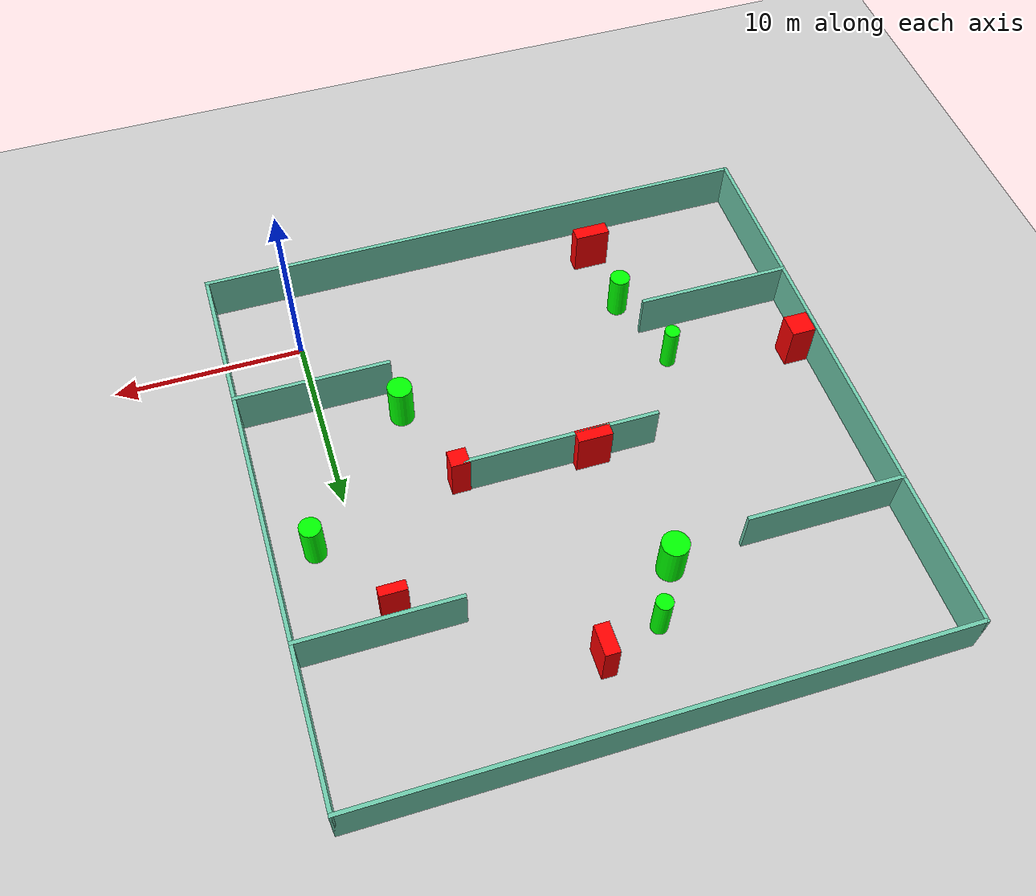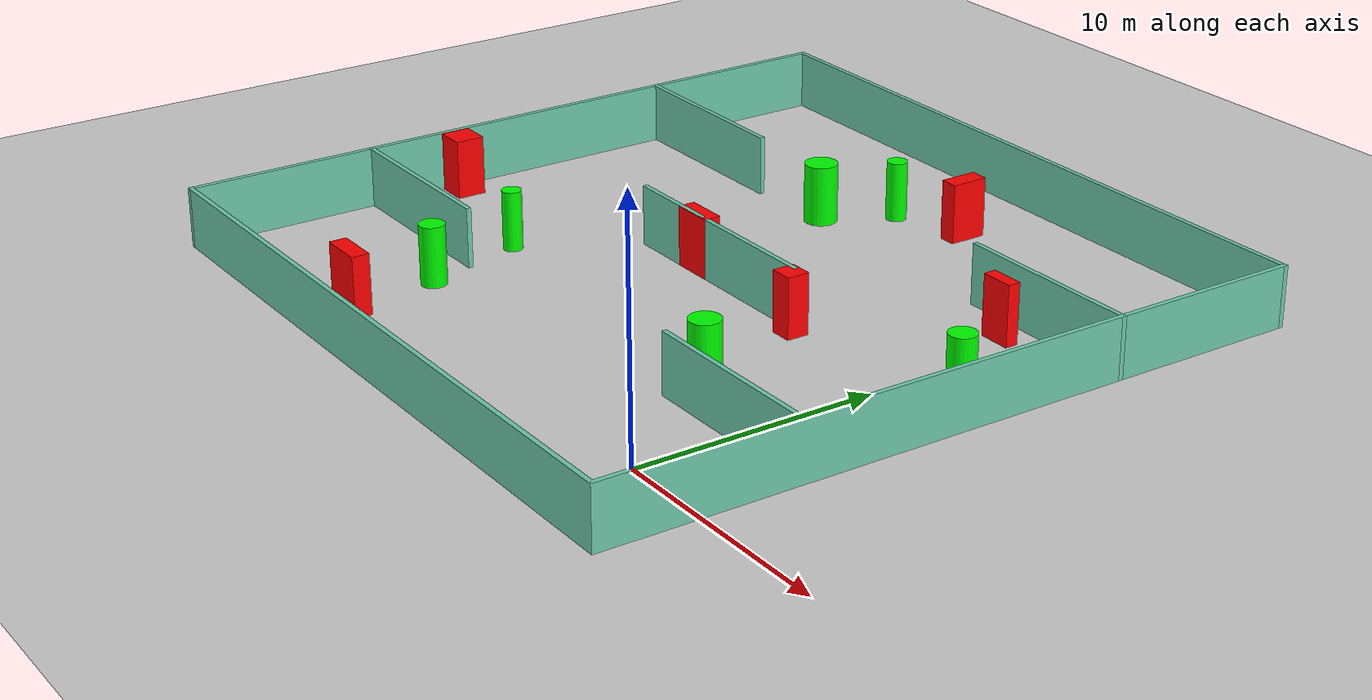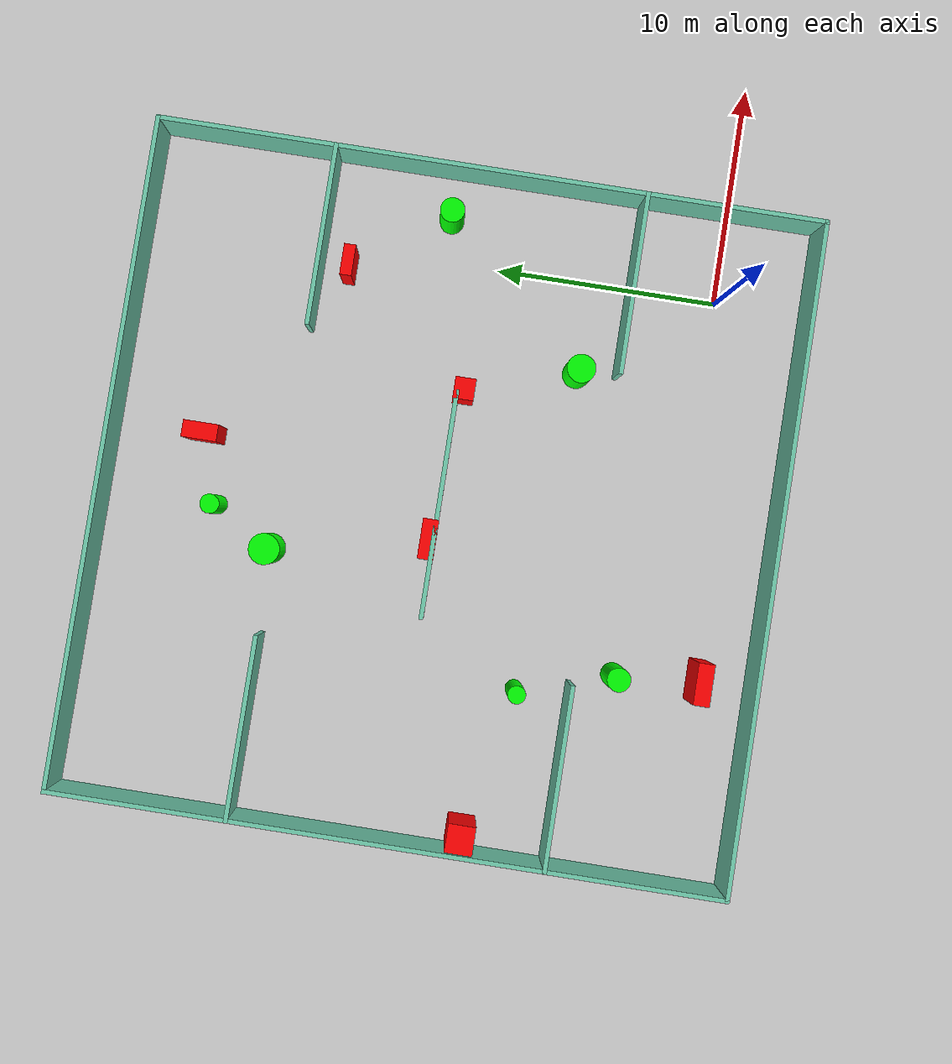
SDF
<sdf version="1.7">
 <world name="default">
  <light name="sun" type="directional">
   <pose>0 0 10 0 -0 0</pose>
   <diffuse>0.8 0.8 0.8 1</diffuse>
   <specular>0.2 0.2 0.2 1</specular>
   <attenuation>
    <range>1000</range>
    <constant>0.9</constant>
    <linear>0.01</linear>
    <quadratic>0.001</quadratic>
   </attenuation>
   <direction>-0.5 0.1 -0.9</direction>
   <spot><inner_angle>0</inner_angle><outer_angle>0</outer_angle><falloff>0</falloff></spot>
  </light>
  <model name="ground_plane">
   <static>1</static>
   <link name="link">
    <collision name="collision">
     <geometry><plane><normal>0 0 1</normal><size>100 100</size></plane></geometry>
     <surface>
      <contact><collide_bitmask>65535</collide_bitmask></contact>
      <friction><ode><mu>100</mu><mu2>50</mu2></ode></friction>
     </surface>
    </collision>
    <visual name="visual">
     <cast_shadows>0</cast_shadows>
     <geometry><plane><normal>0 0 1</normal><size>100 100</size></plane></geometry>
     <material>
      <script><uri>file://media/materials/scripts/gazebo.material</uri><name>Gazebo/Grey</name></script>
     </material>
    </visual>
   </link>
  </model>
  <gravity>0 0 -9.8</gravity>
  <magnetic_field>6e-06 2.3e-05 -4.2e-05</magnetic_field>
  <atmosphere type="adiabatic"/>
  <physics type="ode">
   <max_step_size>0.001</max_step_size>
   <real_time_factor>1</real_time_factor>
   <real_time_update_rate>1000</real_time_update_rate>
  </physics>
  <scene><ambient>0.4 0.4 0.4 1</ambient><background>0.7 0.7 0.7 1</background><shadows>1</shadows></scene>
  <spherical_coordinates>
   <surface_model>EARTH_WGS84</surface_model>
   <latitude_deg>0</latitude_deg>
   <longitude_deg>0</longitude_deg>
   <elevation>0</elevation>
   <heading_deg>0</heading_deg>
  </spherical_coordinates>
  <model name="my_base_walls">
   <link name="Wall_10">
    <collision name="Wall_10_Collision">
     <geometry><box><size>8.2 0.2 2.5</size></box></geometry>
     <pose>0 0 1.25 0 -0 0</pose>
    </collision>
    <visual name="Wall_10_Visual">
     <pose>0 0 1.25 0 -0 0</pose>
     <geometry><box><size>8.2 0.2 2.5</size></box></geometry>
     <material>
      <script><uri>file://media/materials/scripts/gazebo.material</uri><name>Gazebo/Grey</name></script>
      <ambient>0.435294 0.796078 0.67451 1</ambient>
     </material>
     <meta><layer>0</layer></meta>
    </visual>
    <pose>-11 -7 0 0 -0 0</pose>
   </link>
   <link name="Wall_12">
    <collision name="Wall_12_Collision">
     <geometry><box><size>8.2 0.2 2.5</size></box></geometry>
     <pose>0 0 1.25 0 -0 0</pose>
    </collision>
    <visual name="Wall_12_Visual">
     <pose>0 0 1.25 0 -0 0</pose>
     <geometry><box><size>8.2 0.2 2.5</size></box></geometry>
     <material>
      <script><uri>file://media/materials/scripts/gazebo.material</uri><name>Gazebo/Grey</name></script>
      <ambient>0.435294 0.796078 0.67451 1</ambient>
     </material>
     <meta><layer>0</layer></meta>
    </visual>
    <pose>-11 7 0 0 -0 0</pose>
   </link>
   <link name="Wall_14">
    <collision name="Wall_14_Collision">
     <geometry><box><size>8.2 0.2 2.5</size></box></geometry>
     <pose>0 0 1.25 0 -0 0</pose>
    </collision>
    <visual name="Wall_14_Visual">
     <pose>0 0 1.25 0 -0 0</pose>
     <geometry><box><size>8.2 0.2 2.5</size></box></geometry>
     <material>
      <script><uri>file://media/materials/scripts/gazebo.material</uri><name>Gazebo/Grey</name></script>
      <ambient>0.435294 0.796078 0.67451 1</ambient>
     </material>
     <meta><layer>0</layer></meta>
    </visual>
    <pose>11 7 0 0 -0 3.14159</pose>
   </link>
   <link name="Wall_16">
    <collision name="Wall_16_Collision">
     <geometry><box><size>10.2 0.2 2.5</size></box></geometry>
     <pose>0 0 1.25 0 -0 0</pose>
    </collision>
    <visual name="Wall_16_Visual">
     <pose>0 0 1.25 0 -0 0</pose>
     <geometry><box><size>10.2 0.2 2.5</size></box></geometry>
     <material>
      <script><uri>file://media/materials/scripts/gazebo.material</uri><name>Gazebo/Grey</name></script>
      <ambient>0.435294 0.796078 0.67451 1</ambient>
     </material>
     <meta><layer>0</layer></meta>
    </visual>
    <pose>0 0 0 0 -0 3.14159</pose>
   </link>
   <link name="Wall_2">
    <collision name="Wall_2_Collision">
     <geometry><box><size>30.2 0.2 2.5</size></box></geometry>
     <pose>0 0 1.25 0 -0 0</pose>
    </collision>
    <visual name="Wall_2_Visual">
     <pose>0 0 1.25 0 -0 0</pose>
     <geometry><box><size>30.2 0.2 2.5</size></box></geometry>
     <material>
      <script><uri>file://media/materials/scripts/gazebo.material</uri><name>Gazebo/Grey</name></script>
      <ambient>0.435294 0.796078 0.67451 1</ambient>
     </material>
     <meta><layer>0</layer></meta>
    </visual>
    <pose>0 -15 0 0 -0 3.14159</pose>
   </link>
   <link name="Wall_3">
    <collision name="Wall_3_Collision">
     <geometry><box><size>30.2 0.2 2.5</size></box></geometry>
     <pose>0 0 1.25 0 -0 0</pose>
    </collision>
    <visual name="Wall_3_Visual">
     <pose>0 0 1.25 0 -0 0</pose>
     <geometry><box><size>30.2 0.2 2.5</size></box></geometry>
     <material>
      <script><uri>file://media/materials/scripts/gazebo.material</uri><name>Gazebo/Grey</name></script>
      <ambient>0.435294 0.796078 0.67451 1</ambient>
     </material>
     <meta><layer>0</layer></meta>
    </visual>
    <pose>-15 0 0 0 -0 1.5708</pose>
   </link>
   <link name="Wall_4">
    <collision name="Wall_4_Collision">
     <geometry><box><size>30.2 0.2 2.5</size></box></geometry>
     <pose>0 0 1.25 0 -0 0</pose>
    </collision>
    <visual name="Wall_4_Visual">
     <pose>0 0 1.25 0 -0 0</pose>
     <geometry><box><size>30.2 0.2 2.5</size></box></geometry>
     <material>
      <script><uri>file://media/materials/scripts/gazebo.material</uri><name>Gazebo/Grey</name></script>
      <ambient>0.435294 0.796078 0.67451 1</ambient>
     </material>
     <meta><layer>0</layer></meta>
    </visual>
    <pose>0 15 0 0 -0 0</pose>
   </link>
   <link name="Wall_6">
    <collision name="Wall_6_Collision">
     <geometry><box><size>30.2 0.2 2.5</size></box></geometry>
     <pose>0 0 1.25 0 -0 0</pose>
    </collision>
    <visual name="Wall_6_Visual">
     <pose>0 0 1.25 0 -0 0</pose>
     <geometry><box><size>30.2 0.2 2.5</size></box></geometry>
     <material>
      <script><uri>file://media/materials/scripts/gazebo.material</uri><name>Gazebo/Grey</name></script>
      <ambient>0.435294 0.796078 0.67451 1</ambient>
     </material>
     <meta><layer>0</layer></meta>
    </visual>
    <pose>15 0 0 0 -0 1.5708</pose>
   </link>
   <link name="Wall_8">
    <collision name="Wall_8_Collision">
     <geometry><box><size>8.2 0.2 2.5</size></box></geometry>
     <pose>0 0 1.25 0 -0 0</pose>
    </collision>
    <visual name="Wall_8_Visual">
     <pose>0 0 1.25 0 -0 0</pose>
     <geometry><box><size>8.2 0.2 2.5</size></box></geometry>
     <material>
      <script><uri>file://media/materials/scripts/gazebo.material</uri><name>Gazebo/Grey</name></script>
      <ambient>0.435294 0.796078 0.67451 1</ambient>
     </material>
     <meta><layer>0</layer></meta>
    </visual>
    <pose>11 -7 0 0 -0 3.14159</pose>
   </link>
   <static>1</static>
   <pose>-11 11 0 0 -0 0</pose>
  </model>
  <model name="cylinder1">
   <static>1</static>
   <link name="link">
    <inertial>
     <mass>1</mass>
     <inertia><ixx>0.5</ixx><ixy>0</ixy><ixz>0</ixz><iyy>0.5</iyy><iyz>0</iyz><izz>1</izz></inertia>
    </inertial>
    <collision name="collision">
     <geometry><cylinder><radius>0.6397431009562431</radius><length>2.5</length></cylinder></geometry>
    </collision>
    <visual name="visual">
     <geometry><cylinder><radius>0.6397431009562431</radius><length>2.5</length></cylinder></geometry>
     <material>
      <ambient>0 1 0 1</ambient>
      <diffuse>0 1 0 1</diffuse>
      <specular>0.1 0.1 0.1 1</specular>
      <emissive>0 0 0 0</emissive>
     </material>
    </visual>
   </link>
   <pose>-4.134108521977549 5.742899493379516 1.25 0 0 0</pose>
  </model>
  <model name="cylinder2">
   <static>1</static>
   <link name="link">
    <inertial>
     <mass>1</mass>
     <inertia><ixx>0.5</ixx><ixy>0</ixy><ixz>0</ixz><iyy>0.5</iyy><iyz>0</iyz><izz>1</izz></inertia>
    </inertial>
    <collision name="collision">
     <geometry><cylinder><radius>0.6905110313114032</radius><length>2.5</length></cylinder></geometry>
    </collision>
    <visual name="visual">
     <geometry><cylinder><radius>0.6905110313114032</radius><length>2.5</length></cylinder></geometry>
     <material>
      <ambient>0 1 0 1</ambient>
      <diffuse>0 1 0 1</diffuse>
      <specular>0.1 0.1 0.1 1</specular>
      <emissive>0 0 0 0</emissive>
     </material>
    </visual>
   </link>
   <pose>-14.142089589013787 18.261413111695276 1.25 0 0 0</pose>
  </model>
  <model name="cylinder3">
   <static>1</static>
   <link name="link">
    <inertial>
     <mass>1</mass>
     <inertia><ixx>0.5</ixx><ixy>0</ixy><ixz>0</ixz><iyy>0.5</iyy><iyz>0</iyz><izz>1</izz></inertia>
    </inertial>
    <collision name="collision">
     <geometry><cylinder><radius>0.5536535102079037</radius><length>2.5</length></cylinder></geometry>
    </collision>
    <visual name="visual">
     <geometry><cylinder><radius>0.5536535102079037</radius><length>2.5</length></cylinder></geometry>
     <material>
      <ambient>0 1 0 1</ambient>
      <diffuse>0 1 0 1</diffuse>
      <specular>0.1 0.1 0.1 1</specular>
      <emissive>0 0 0 0</emissive>
     </material>
    </visual>
   </link>
   <pose>1.9284412237336817 12.444355445931023 1.25 0 0 0</pose>
  </model>
  <model name="cylinder4">
   <static>1</static>
   <link name="link">
    <inertial>
     <mass>1</mass>
     <inertia><ixx>0.5</ixx><ixy>0</ixy><ixz>0</ixz><iyy>0.5</iyy><iyz>0</iyz><izz>1</izz></inertia>
    </inertial>
    <collision name="collision">
     <geometry><cylinder><radius>0.3994426998415395</radius><length>2.5</length></cylinder></geometry>
    </collision>
    <visual name="visual">
     <geometry><cylinder><radius>0.3994426998415395</radius><length>2.5</length></cylinder></geometry>
     <material>
      <ambient>0 1 0 1</ambient>
      <diffuse>0 1 0 1</diffuse>
      <specular>0.1 0.1 0.1 1</specular>
      <emissive>0 0 0 0</emissive>
     </material>
    </visual>
   </link>
   <pose>-18.67029576129611 6.363129776253073 1.25 0 0 0</pose>
  </model>
  <model name="cylinder5">
   <static>1</static>
   <link name="link">
    <inertial>
     <mass>1</mass>
     <inertia><ixx>0.5</ixx><ixy>0</ixy><ixz>0</ixz><iyy>0.5</iyy><iyz>0</iyz><izz>1</izz></inertia>
    </inertial>
    <collision name="collision">
     <geometry><cylinder><radius>0.42861821363298774</radius><length>2.5</length></cylinder></geometry>
    </collision>
    <visual name="visual">
     <geometry><cylinder><radius>0.42861821363298774</radius><length>2.5</length></cylinder></geometry>
     <material>
      <ambient>0 1 0 1</ambient>
      <diffuse>0 1 0 1</diffuse>
      <specular>0.1 0.1 0.1 1</specular>
      <emissive>0 0 0 0</emissive>
     </material>
    </visual>
   </link>
   <pose>-12.558447688513667 20.93592740833566 1.25 0 0 0</pose>
  </model>
  <model name="cylinder6">
   <static>1</static>
   <link name="link">
    <inertial>
     <mass>1</mass>
     <inertia><ixx>0.5</ixx><ixy>0</ixy><ixz>0</ixz><iyy>0.5</iyy><iyz>0</iyz><izz>1</izz></inertia>
    </inertial>
    <collision name="collision">
     <geometry><cylinder><radius>0.526168693816774</radius><length>2.5</length></cylinder></geometry>
    </collision>
    <visual name="visual">
     <geometry><cylinder><radius>0.526168693816774</radius><length>2.5</length></cylinder></geometry>
     <material>
      <ambient>0 1 0 1</ambient>
      <diffuse>0 1 0 1</diffuse>
      <specular>0.1 0.1 0.1 1</specular>
      <emissive>0 0 0 0</emissive>
     </material>
    </visual>
   </link>
   <pose>-17.339391403017526 2.061014521502382 1.25 0 0 0</pose>
  </model>
  <model name="box1">
   <static>1</static>
   <link name="link">
    <inertial>
     <mass>1</mass>
     <inertia><ixx>0.083</ixx><ixy>0</ixy><ixz>0</ixz><iyy>0.083</iyy><iyz>0</iyz><izz>0.083</izz></inertia>
    </inertial>
    <collision name="collision">
     <geometry><box><size>1.8647187526219808 0.7261707900950382 2.5</size></box></geometry>
    </collision>
    <visual name="visual">
     <geometry><box><size>1.8647187526219808 0.7261707900950382 2.5</size></box></geometry>
     <material>
      <ambient>1 0 0 1</ambient>
      <diffuse>1 0 0 1</diffuse>
      <specular>0.1 0.1 0.1 1</specular>
      <emissive>0 0 0 0</emissive>
     </material>
    </visual>
    <sensor name="my_contact" type="contact">
     <contact><collision>box_collision</collision><topic>__default_topic__</topic></contact>
    </sensor>
   </link>
   <pose>-16.974040410379402 -1.636558433333073 1.25 0 0 0</pose>
  </model>
  <model name="box2">
   <static>1</static>
   <link name="link">
    <inertial>
     <mass>1</mass>
     <inertia><ixx>0.083</ixx><ixy>0</ixy><ixz>0</ixz><iyy>0.083</iyy><iyz>0</iyz><izz>0.083</izz></inertia>
    </inertial>
    <collision name="collision">
     <geometry><box><size>0.9658207679491679 0.9241134005880147 2.5</size></box></geometry>
    </collision>
    <visual name="visual">
     <geometry><box><size>0.9658207679491679 0.9241134005880147 2.5</size></box></geometry>
     <material>
      <ambient>1 0 0 1</ambient>
      <diffuse>1 0 0 1</diffuse>
      <specular>0.1 0.1 0.1 1</specular>
      <emissive>0 0 0 0</emissive>
     </material>
    </visual>
    <sensor name="my_contact" type="contact">
     <contact><collision>box_collision</collision><topic>__default_topic__</topic></contact>
    </sensor>
   </link>
   <pose>-5.810021066209746 10.690204834443186 1.25 0 0 0</pose>
  </model>
  <model name="box3">
   <static>1</static>
   <link name="link">
    <inertial>
     <mass>1</mass>
     <inertia><ixx>0.083</ixx><ixy>0</ixy><ixz>0</ixz><iyy>0.083</iyy><iyz>0</iyz><izz>0.083</izz></inertia>
    </inertial>
    <collision name="collision">
     <geometry><box><size>1.7931808193962784 0.6979119515530111 2.5</size></box></geometry>
    </collision>
    <visual name="visual">
     <geometry><box><size>1.7931808193962784 0.6979119515530111 2.5</size></box></geometry>
     <material>
      <ambient>1 0 0 1</ambient>
      <diffuse>1 0 0 1</diffuse>
      <specular>0.1 0.1 0.1 1</specular>
      <emissive>0 0 0 0</emissive>
     </material>
    </visual>
    <sensor name="my_contact" type="contact">
     <contact><collision>box_collision</collision><topic>__default_topic__</topic></contact>
    </sensor>
   </link>
   <pose>-12.600524127244029 11.23354067831136 1.25 0 0 0</pose>
  </model>
  <model name="box4">
   <static>1</static>
   <link name="link">
    <inertial>
     <mass>1</mass>
     <inertia><ixx>0.083</ixx><ixy>0</ixy><ixz>0</ixz><iyy>0.083</iyy><iyz>0</iyz><izz>0.083</izz></inertia>
    </inertial>
    <collision name="collision">
     <geometry><box><size>1.3856284155618745 0.5257920825040063 2.5</size></box></geometry>
    </collision>
    <visual name="visual">
     <geometry><box><size>1.3856284155618745 0.5257920825040063 2.5</size></box></geometry>
     <material>
      <ambient>1 0 0 1</ambient>
      <diffuse>1 0 0 1</diffuse>
      <specular>0.1 0.1 0.1 1</specular>
      <emissive>0 0 0 0</emissive>
     </material>
    </visual>
    <sensor name="my_contact" type="contact">
     <contact><collision>box_collision</collision><topic>__default_topic__</topic></contact>
    </sensor>
   </link>
   <pose>-0.9747455199618855 16.6733635337295 1.25 0 0 0</pose>
  </model>
  <model name="box5">
   <static>1</static>
   <link name="link">
    <inertial>
     <mass>1</mass>
     <inertia><ixx>0.083</ixx><ixy>0</ixy><ixz>0</ixz><iyy>0.083</iyy><iyz>0</iyz><izz>0.083</izz></inertia>
    </inertial>
    <collision name="collision">
     <geometry><box><size>1.2749085469749188 1.2257327178360273 2.5</size></box></geometry>
    </collision>
    <visual name="visual">
     <geometry><box><size>1.2749085469749188 1.2257327178360273 2.5</size></box></geometry>
     <material>
      <ambient>1 0 0 1</ambient>
      <diffuse>1 0 0 1</diffuse>
      <specular>0.1 0.1 0.1 1</specular>
      <emissive>0 0 0 0</emissive>
     </material>
    </visual>
    <sensor name="my_contact" type="contact">
     <contact><collision>box_collision</collision><topic>__default_topic__</topic></contact>
    </sensor>
   </link>
   <pose>-25.22245249660237 7.8216316381617155 1.25 0 0 0</pose>
  </model>
  <model name="box6">
   <static>1</static>
   <link name="link">
    <inertial>
     <mass>1</mass>
     <inertia><ixx>0.083</ixx><ixy>0</ixy><ixz>0</ixz><iyy>0.083</iyy><iyz>0</iyz><izz>0.083</izz></inertia>
    </inertial>
    <collision name="collision">
     <geometry><box><size>0.7545027349280207 1.5722421967136728 2.5</size></box></geometry>
    </collision>
    <visual name="visual">
     <geometry><box><size>0.7545027349280207 1.5722421967136728 2.5</size></box></geometry>
     <material>
      <ambient>1 0 0 1</ambient>
      <diffuse>1 0 0 1</diffuse>
      <specular>0.1 0.1 0.1 1</specular>
      <emissive>0 0 0 0</emissive>
     </material>
    </visual>
    <sensor name="my_contact" type="contact">
     <contact><collision>box_collision</collision><topic>__default_topic__</topic></contact>
    </sensor>
   </link>
   <pose>-9.458183649161688 21.88487773707949 1.25 0 0 0</pose>
  </model>
 </world>
</sdf>
